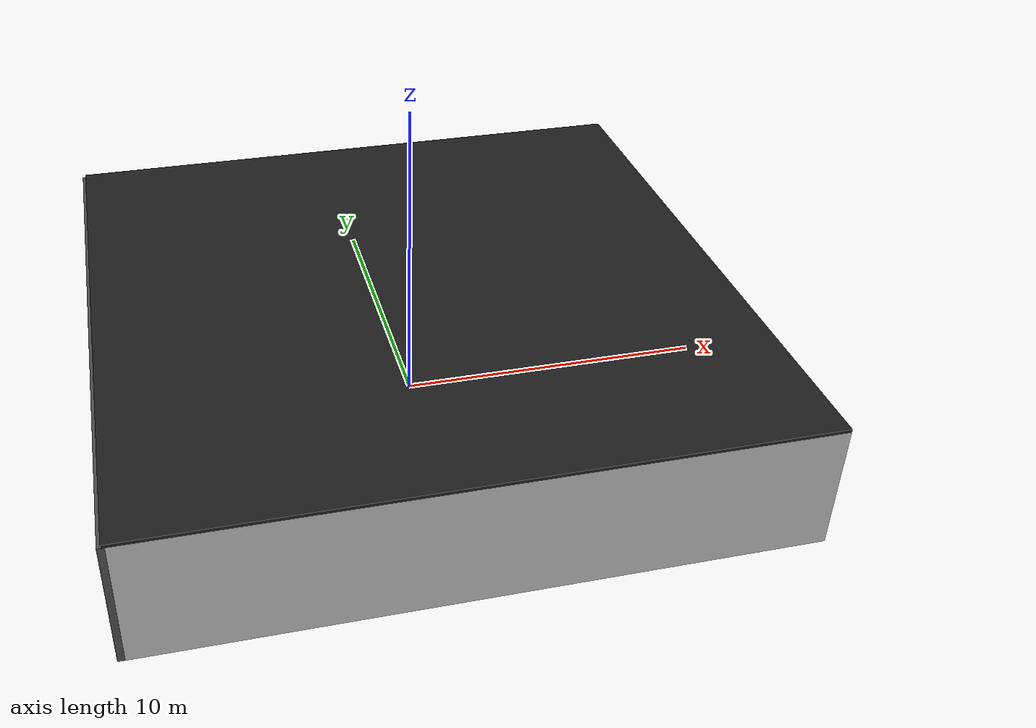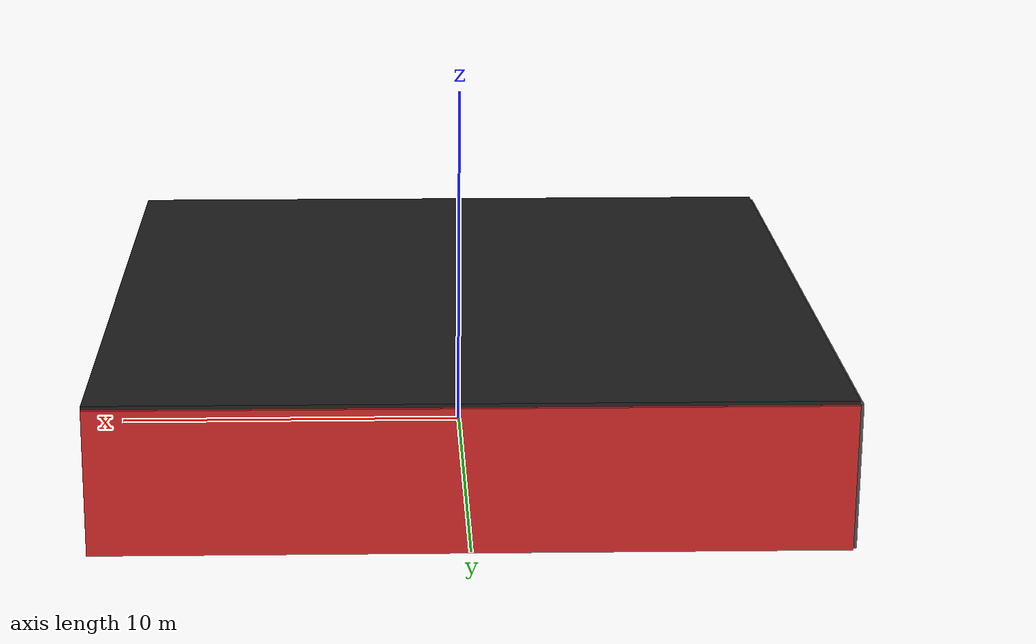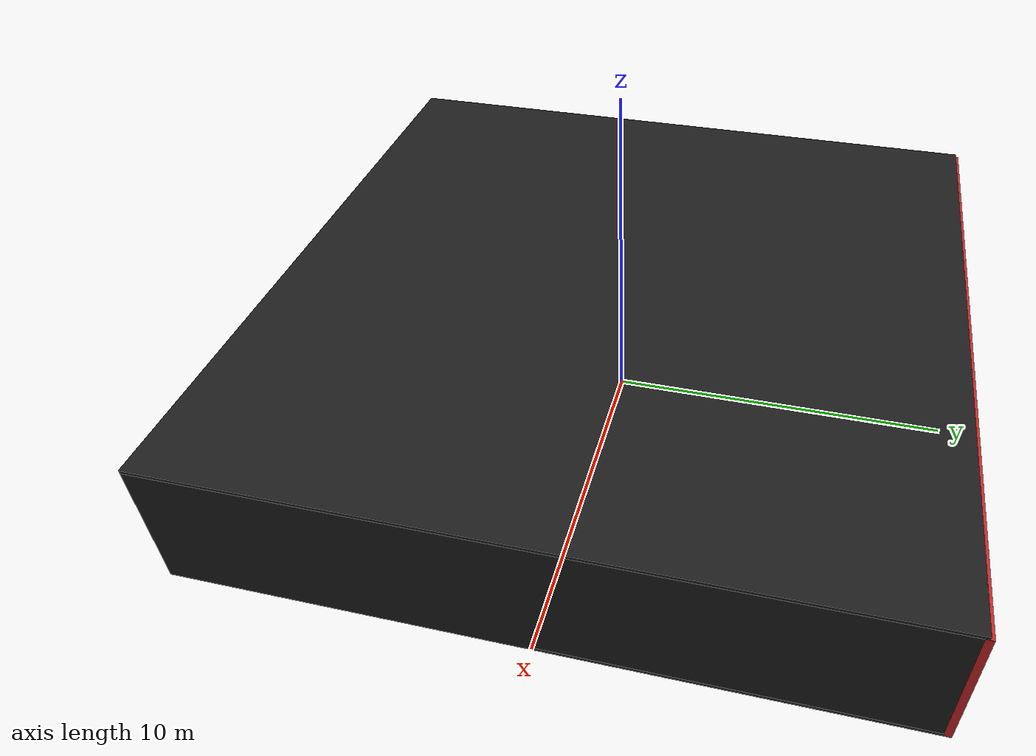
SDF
<sdf version="1.4">
 <world name="default">
  <physics type="ode">
   <max_step_size>0.001</max_step_size>
   <real_time_factor>1</real_time_factor>
   <real_time_update_rate>1000</real_time_update_rate>
   <gravity>0 0 -9.8</gravity>
  </physics>
  <scene><ambient>0.4 0.4 0.4 1</ambient><background>0.7 0.7 0.7 1</background><shadows>1</shadows></scene>
  <model name="Surrounding">
   <static>1</static>
   <link name="Ceiling">
    <collision name="Ceiling_Collision"><geometry><box><size>20 20 0.1</size></box></geometry></collision>
    <visual name="Ceiling_Visual">
     <geometry><box><size>20 20 0.1</size></box></geometry>
     <material>
      <script><uri>file://media/materials/scripts/gazebo.material</uri><name>Gazebo/FlatBlack</name></script>
     </material>
    </visual>
    <pose>0 0 4.05 0 0 0</pose>
   </link>
   <link name="Wall_South">
    <collision name="Wall_South_Collision">
     <geometry><box><size>20 0 4</size></box></geometry>
     <pose>0 0 2 0 -0 0</pose>
    </collision>
    <visual name="Wall_South_Visual">
     <pose>0 0 2 0 -0 0</pose>
     <geometry><box><size>20 0 4</size></box></geometry>
     <material>
      <script><uri>file://media/materials/scripts/gazebo.material</uri><name>Gazebo/JointAnchor</name></script>
     </material>
    </visual>
    <velocity_decay><linear>0</linear><angular>0</angular></velocity_decay>
    <pose>0 -10 0 0 -0 0</pose>
   </link>
   <link name="Wall_East">
    <collision name="Wall_21_Collision">
     <geometry><box><size>20 0 4</size></box></geometry>
     <pose>0 0 2 0 -0 0</pose>
    </collision>
    <visual name="Wall_21_Visual">
     <pose>0 0 2 0 -0 0</pose>
     <geometry><box><size>20 0 4</size></box></geometry>
     <material>
      <script><uri>file://media/materials/scripts/gazebo.material</uri><name>Gazebo/FlatBlack</name></script>
     </material>
    </visual>
    <velocity_decay><linear>0</linear><angular>0</angular></velocity_decay>
    <pose>10 0 0 0 -0 1.5708</pose>
   </link>
   <link name="Wall_North">
    <collision name="Wall_22_Collision">
     <geometry><box><size>20 0.2 4</size></box></geometry>
     <pose>0 0 2 0 -0 0</pose>
    </collision>
    <visual name="Wall_22_Visual">
     <pose>0 0 2 0 -0 0</pose>
     <geometry><box><size>20 0.2 4</size></box></geometry>
     <material>
      <script><uri>file://media/materials/scripts/gazebo.material</uri><name>Gazebo/Red</name></script>
     </material>
    </visual>
    <velocity_decay><linear>0</linear><angular>0</angular></velocity_decay>
    <pose>0 10 0 0 -0 0</pose>
   </link>
   <link name="Wall_West">
    <collision name="Wall_23_Collision">
     <geometry><box><size>20 0.2 4</size></box></geometry>
     <pose>0 0 2 0 -0 0</pose>
    </collision>
    <visual name="Wall_23_Visual">
     <pose>0 0 2 0 -0 0</pose>
     <geometry><box><size>20 0.2 4</size></box></geometry>
     <material>
      <script><uri>file://media/materials/scripts/gazebo.material</uri><name>Gazebo/DarkGrey</name></script>
     </material>
    </visual>
    <velocity_decay><linear>0</linear><angular>0</angular></velocity_decay>
    <pose>-10 0 0 0 0 -1.5708</pose>
   </link>
   <link name="Ground_link">
    <collision name="collision">
     <pose>0 0 .05 0 -0 0</pose>
     <geometry><box><size>20 20 0.1</size></box></geometry>
    </collision>
    <visual name="visual">
     <pose>0 0 .05 0 -0 0</pose>
     <geometry><box><size>20 20 0.1</size></box></geometry>
     <material>
      <script><uri>file://media/materials/scripts/gazebo.material</uri><name>Gazebo/Black</name></script>
     </material>
    </visual>
   </link>
   <static>1</static>
  </model>
  <spherical_coordinates>
   <surface_model>EARTH_WGS84</surface_model>
   <latitude_deg>0</latitude_deg>
   <longitude_deg>0</longitude_deg>
   <elevation>0</elevation>
   <heading_deg>0</heading_deg>
  </spherical_coordinates>
  <light name="lightball_0" type="diffuse">
   <diffuse>0.8 0.8 0.8 1</diffuse>
   <specular>0.2 0.2 0.2 1</specular>
   <attenuation>
    <range>100</range>
    <constant>0.7</constant>
    <linear>0.01</linear>
    <quadratic>0.001</quadratic>
   </attenuation>
   <direction>-0.5 0.1 -0.9</direction>
   <pose>-5.71514292069 -1.89328131177 1.47108858043 0 0 0</pose>
  </light>
  <light name="lightball_1" type="diffuse">
   <diffuse>0.8 0.8 0.8 1</diffuse>
   <specular>0.2 0.2 0.2 1</specular>
   <attenuation>
    <range>100</range>
    <constant>0.7</constant>
    <linear>0.01</linear>
    <quadratic>0.001</quadratic>
   </attenuation>
   <direction>-0.5 0.1 -0.9</direction>
   <pose>-0.273764415174 -1.37957240654 0.984729983585 0 0 0</pose>
  </light>
  <light name="lightball_2" type="diffuse">
   <diffuse>0.8 0.8 0.8 1</diffuse>
   <specular>0.2 0.2 0.2 1</specular>
   <attenuation>
    <range>100</range>
    <constant>0.7</constant>
    <linear>0.01</linear>
    <quadratic>0.001</quadratic>
   </attenuation>
   <direction>-0.5 0.1 -0.9</direction>
   <pose>2.40817995413 8.03846753082 1.67122966671 0 0 0</pose>
  </light>
  <light name="lightball_3" type="diffuse">
   <diffuse>0.8 0.8 0.8 1</diffuse>
   <specular>0.2 0.2 0.2 1</specular>
   <attenuation>
    <range>100</range>
    <constant>0.7</constant>
    <linear>0.01</linear>
    <quadratic>0.001</quadratic>
   </attenuation>
   <direction>-0.5 0.1 -0.9</direction>
   <pose>7.69675900158 6.19093720272 0.63519640721 0 0 0</pose>
  </light>
  <light name="lightball_4" type="diffuse">
   <diffuse>0.8 0.8 0.8 1</diffuse>
   <specular>0.2 0.2 0.2 1</specular>
   <attenuation>
    <range>100</range>
    <constant>0.7</constant>
    <linear>0.01</linear>
    <quadratic>0.001</quadratic>
   </attenuation>
   <direction>-0.5 0.1 -0.9</direction>
   <pose>4.70986144307 -1.5917991002 2.95988012062 0 0 0</pose>
  </light>
  <light name="lightball_5" type="diffuse">
   <diffuse>0.8 0.8 0.8 1</diffuse>
   <specular>0.2 0.2 0.2 1</specular>
   <attenuation>
    <range>100</range>
    <constant>0.7</constant>
    <linear>0.01</linear>
    <quadratic>0.001</quadratic>
   </attenuation>
   <direction>-0.5 0.1 -0.9</direction>
   <pose>3.21802448639 -5.40058345029 1.84499783195 0 0 0</pose>
  </light>
  <light name="lightball_6" type="diffuse">
   <diffuse>0.8 0.8 0.8 1</diffuse>
   <specular>0.2 0.2 0.2 1</specular>
   <attenuation>
    <range>100</range>
    <constant>0.7</constant>
    <linear>0.01</linear>
    <quadratic>0.001</quadratic>
   </attenuation>
   <direction>-0.5 0.1 -0.9</direction>
   <pose>-9.70853917405 4.5357724893 2.70643274966 0 0 0</pose>
  </light>
  <light name="lightball_7" type="diffuse">
   <diffuse>0.8 0.8 0.8 1</diffuse>
   <specular>0.2 0.2 0.2 1</specular>
   <attenuation>
    <range>100</range>
    <constant>0.7</constant>
    <linear>0.01</linear>
    <quadratic>0.001</quadratic>
   </attenuation>
   <direction>-0.5 0.1 -0.9</direction>
   <pose>9.55657015703 -2.0295275669 3.54657412171 0 0 0</pose>
  </light>
  <light name="lightball_8" type="diffuse">
   <diffuse>0.8 0.8 0.8 1</diffuse>
   <specular>0.2 0.2 0.2 1</specular>
   <attenuation>
    <range>100</range>
    <constant>0.7</constant>
    <linear>0.01</linear>
    <quadratic>0.001</quadratic>
   </attenuation>
   <direction>-0.5 0.1 -0.9</direction>
   <pose>6.98344578764 4.96863149713 1.83420427312 0 0 0</pose>
  </light>
  <light name="lightball_9" type="diffuse">
   <diffuse>0.8 0.8 0.8 1</diffuse>
   <specular>0.2 0.2 0.2 1</specular>
   <attenuation>
    <range>100</range>
    <constant>0.7</constant>
    <linear>0.01</linear>
    <quadratic>0.001</quadratic>
   </attenuation>
   <direction>-0.5 0.1 -0.9</direction>
   <pose>5.97268506297 4.66996324453 2.72471319225 0 0 0</pose>
  </light>
  <light name="lightball_10" type="diffuse">
   <diffuse>0.8 0.8 0.8 1</diffuse>
   <specular>0.2 0.2 0.2 1</specular>
   <attenuation>
    <range>100</range>
    <constant>0.7</constant>
    <linear>0.01</linear>
    <quadratic>0.001</quadratic>
   </attenuation>
   <direction>-0.5 0.1 -0.9</direction>
   <pose>-6.34890689205 -4.90644973571 1.57930589373 0 0 0</pose>
  </light>
  <light name="lightball_11" type="diffuse">
   <diffuse>0.8 0.8 0.8 1</diffuse>
   <specular>0.2 0.2 0.2 1</specular>
   <attenuation>
    <range>100</range>
    <constant>0.7</constant>
    <linear>0.01</linear>
    <quadratic>0.001</quadratic>
   </attenuation>
   <direction>-0.5 0.1 -0.9</direction>
   <pose>-9.84150373918 0.830583730674 3.71346614868 0 0 0</pose>
  </light>
  <light name="lightball_12" type="diffuse">
   <diffuse>0.8 0.8 0.8 1</diffuse>
   <specular>0.2 0.2 0.2 1</specular>
   <attenuation>
    <range>100</range>
    <constant>0.7</constant>
    <linear>0.01</linear>
    <quadratic>0.001</quadratic>
   </attenuation>
   <direction>-0.5 0.1 -0.9</direction>
   <pose>-1.46706084482 2.12227489974 2.17870016576 0 0 0</pose>
  </light>
  <include><uri>model://cabinet</uri><pose>-8.40245309882 -8.28588758685 0 0 0 0.774070277142</pose></include>
  <include>
   <uri>model://robocup_3Dsim_goal</uri>
   <pose>-7.59382670368 4.46768585874 0 0 0 1.05088927753</pose>
  </include>
  <include>
   <uri>model://robocup_3Dsim_goal</uri>
   <pose>-7.79454628712 7.12007539281 0 0 0 2.17074332783</pose>
  </include>
  <include>
   <uri>model://robocup_3Dsim_goal</uri>
   <pose>-5.13865184663 7.99433233935 0 0 0 1.89686933178</pose>
  </include>
  <include><uri>model://cabinet</uri><pose>-1.94919189291 -1.99253549444 0 0 0 0.643578710545</pose></include>
  <include>
   <uri>model://construction_cone</uri>
   <pose>0.934573725379 -8.47808592679 0 0 0 0.739238091009</pose>
  </include>
  <include><uri>model://cabinet</uri><pose>4.3944465044 2.36462542012 0 0 0 0.971575096256</pose></include>
  <include>
   <uri>model://textured_shapes</uri>
   <pose>4.56188286348 5.68325957549 0 0 0 0.824654946488</pose>
  </include>
 </world>
</sdf>

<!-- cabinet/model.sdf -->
<sdf version="1.5">
  <model name="cabinet">
    <static>true</static>
    <link name="cabinet_bottom_plate">
      <inertial>
        <pose>0 0 -1 0 0 0</pose>
        <inertia>
          <ixx>2.050000</ixx>
          <ixy>0</ixy>
          <ixz>0</ixz>
          <iyy>2.050000</iyy>
          <iyz>0</iyz>
          <izz>2.050000</izz>
        </inertia>
        <mass>25.000000</mass>
      </inertial>
      <collision name="cabinet_bottom_plate_geom">
        <pose>0 0 0.010000 0 0 0</pose>
        <geometry>
          <box>
            <size>0.450000 0.450000 0.020000</size>
          </box>
        </geometry>
      </collision>
      <visual name="cabinet_bottom_plate_geom_visual">
        <pose>0 0 0.010000 0 0 0</pose>
        <geometry>
          <box>
            <size>0.450000 0.450000 0.020000</size>
          </box>
        </geometry>
        <material>
          <script>
            <uri>model://media/materials/scripts/gazebo.material</uri>
            <name>Gazebo/Wood</name>
          </script>
        </material>
      </visual>
      <collision name="cabinet_bottom_plate_geom_cabinet_back_plate">
        <pose>0.235000 0 0.510000 0 0 0</pose>
        <geometry>
          <box>
            <size>0.020000 0.450000 1.020000</size>
          </box>
        </geometry>
      </collision>
      <visual name="cabinet_bottom_plate_geom_cabinet_back_plate_visual">
        <pose>0.235000 0 0.510000 0 0 0</pose>
        <geometry>
          <box>
            <size>0.020000 0.450000 1.020000</size>
          </box>
        </geometry>
        <material>
          <script>
            <uri>model://media/materials/scripts/gazebo.material</uri>
            <name>Gazebo/Wood</name>
          </script>
        </material>
      </visual>
      <collision name="cabinet_bottom_plate_geom_cabinet_left_plate">
        <pose>0 0.235000 0.510000 0 0 0</pose>
        <geometry>
          <box>
            <size>0.450000 0.020000 1.020000</size>
          </box>
        </geometry>
      </collision>
      <visual name="cabinet_bottom_plate_geom_cabinet_left_plate_visual">
        <pose>0 0.235000 0.510000 0 0 0</pose>
        <geometry>
          <box>
            <size>0.450000 0.020000 1.020000</size>
          </box>
        </geometry>
        <material>
          <script>
            <uri>model://media/materials/scripts/gazebo.material</uri>
            <name>Gazebo/Wood</name>
          </script>
        </material>
      </visual>
      <collision name="cabinet_bottom_plate_geom_cabinet_middle_plate">
        <pose>0 0 0.510000 0 0 0</pose>
        <geometry>
          <box>
            <size>0.450000 0.450000 0.020000</size>
          </box>
        </geometry>
      </collision>
      <visual name="cabinet_bottom_plate_geom_cabinet_middle_plate_visual">
        <pose>0 0 0.510000 0 0 0</pose>
        <geometry>
          <box>
            <size>0.450000 0.450000 0.020000</size>
          </box>
        </geometry>
        <material>
          <script>
            <uri>model://media/materials/scripts/gazebo.material</uri>
            <name>Gazebo/Wood</name>
          </script>
        </material>
      </visual>
      <collision name="cabinet_bottom_plate_geom_cabinet_right_plate">
        <pose>0 -0.235000 0.510000 0 0 0</pose>
        <geometry>
          <box>
            <size>0.450000 0.020000 1.020000</size>
          </box>
        </geometry>
      </collision>
      <visual name="cabinet_bottom_plate_geom_cabinet_right_plate_visual">
        <pose>0 -0.235000 0.510000 0 0 0</pose>
        <geometry>
          <box>
            <size>0.450000 0.020000 1.020000</size>
          </box>
        </geometry>
        <material>
          <script>
            <uri>model://media/materials/scripts/gazebo.material</uri>
            <name>Gazebo/Wood</name>
          </script>
        </material>
      </visual>
      <collision name="cabinet_bottom_plate_geom_cabinet_top_plate">
        <pose>0 0 1.010000 0 0 0</pose>
        <geometry>
          <box>
            <size>0.450000 0.450000 0.020000</size>
          </box>
        </geometry>
      </collision>
      <visual name="cabinet_bottom_plate_geom_cabinet_top_plate_visual">
        <pose>0 0 1.010000 0 0 0</pose>
        <geometry>
          <box>
            <size>0.450000 0.450000 0.020000</size>
          </box>
        </geometry>
        <material>
          <script>
            <uri>model://media/materials/scripts/gazebo.material</uri>
            <name>Gazebo/Wood</name>
          </script>
        </material>
      </visual>
    </link>
  </model>
</sdf>

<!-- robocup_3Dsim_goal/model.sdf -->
<sdf version="1.5">
  <model name="robocup_3d_goal">
    <static>true</static>
    <link name="left_post">
      <pose>0 1.05 0.45 0 0 0</pose>
      <collision name="collision">
        <geometry>
          <cylinder>
            <radius>0.05</radius>
            <length>0.9</length>
          </cylinder>
        </geometry>
      </collision>
      <visual name="visual">
        <geometry>
          <cylinder>
            <radius>0.05</radius>
            <length>0.9</length>
          </cylinder>
        </geometry>
        <material>
          <script>
            <uri>file://media/materials/scripts/gazebo.material</uri>
            <name>Gazebo/ZincYellow</name>
          </script>
        </material>
      </visual>
    </link>
    <link name="left_support_horiz_lower">
      <pose>0.30 1.05 0.01 0 0 0</pose>
      <collision name="collision">
        <geometry>
          <box>
            <size>0.50 0.02 0.02</size>
          </box>
        </geometry>
      </collision>
      <visual name="visual">
        <geometry>
          <box>
            <size>0.50 0.02 0.02</size>
          </box>
        </geometry>
        <material>
          <script>
            <uri>file://media/materials/scripts/gazebo.material</uri>
            <name>Gazebo/White</name>
          </script>
        </material>
      </visual>
    </link>
    <link name="left_support_horiz_upper">
      <pose>0.30 1.05 0.79 0 0 0</pose>
      <collision name="collision">
        <geometry>
          <box>
            <size>0.50 0.02 0.02</size>
          </box>
        </geometry>
      </collision>
      <visual name="visual">
        <geometry>
          <box>
            <size>0.50 0.02 0.02</size>
          </box>
        </geometry>
        <material>
          <script>
            <uri>file://media/materials/scripts/gazebo.material</uri>
            <name>Gazebo/White</name>
          </script>
        </material>
      </visual>
    </link>
    <link name="left_support_vertical">
      <pose>0.56 1.05 0.4 0 1.5708 0</pose>
      <collision name="collision">
        <geometry>
          <box>
            <size>0.80 0.02 0.02</size>
          </box>
        </geometry>
      </collision>
      <visual name="visual">
        <geometry>
          <box>
            <size>0.80 0.02 0.02</size>
          </box>
        </geometry>
        <material>
          <script>
            <uri>file://media/materials/scripts/gazebo.material</uri>
            <name>Gazebo/White</name>
          </script>
        </material>
      </visual>
    </link>
    <link name="right_support_horiz_lower">
      <pose>0.30 -1.05 0.01 0 0 0</pose>
      <collision name="collision">
        <geometry>
          <box>
            <size>0.50 0.02 0.02</size>
          </box>
        </geometry>
      </collision>
      <visual name="visual">
        <geometry>
          <box>
            <size>0.50 0.02 0.02</size>
          </box>
        </geometry>
        <material>
          <script>
            <uri>file://media/materials/scripts/gazebo.material</uri>
            <name>Gazebo/White</name>
          </script>
        </material>
      </visual>
    </link>
    <link name="right_support_horiz_upper">
      <pose>0.30 -1.05 0.79 0 0 0</pose>
      <collision name="collision">
        <geometry>
          <box>
            <size>0.50 0.02 0.02</size>
          </box>
        </geometry>
      </collision>
      <visual name="visual">
        <geometry>
          <box>
            <size>0.50 0.02 0.02</size>
          </box>
        </geometry>
        <material>
          <script>
            <uri>file://media/materials/scripts/gazebo.material</uri>
            <name>Gazebo/White</name>
          </script>
        </material>
      </visual>
    </link>
    <link name="right_support_vertical">
      <pose>0.56 -1.05 0.4 0 1.5708 0</pose>
      <collision name="collision">
        <geometry>
          <box>
            <size>0.80 0.02 0.02</size>
          </box>
        </geometry>
      </collision>
      <visual name="visual">
        <geometry>
          <box>
            <size>0.80 0.02 0.02</size>
          </box>
        </geometry>
        <material>
          <script>
            <uri>file://media/materials/scripts/gazebo.material</uri>
            <name>Gazebo/White</name>
          </script>
        </material>
      </visual>
    </link>
    <link name="center_support_horiz_lower">
      <pose>0.56 0 0.01 0 1.5708 0</pose>
      <collision name="collision">
        <geometry>
          <box>
            <size>0.02 2.08 0.02</size>
          </box>
        </geometry>
      </collision>
      <visual name="visual">
        <geometry>
          <box>
            <size>0.02 2.08 0.02</size>
          </box>
        </geometry>
        <material>
          <script>
            <uri>file://media/materials/scripts/gazebo.material</uri>
            <name>Gazebo/White</name>
          </script>
        </material>
      </visual>
    </link>
    <link name="center_support_horiz_upper">
      <pose>0.56 0 0.79 0 1.5708 0</pose>
      <collision name="collision">
        <geometry>
          <box>
            <size>0.02 2.08 0.02</size>
          </box>
        </geometry>
      </collision>
      <visual name="visual">
        <geometry>
          <box>
            <size>0.02 2.08 0.02</size>
          </box>
        </geometry>
        <material>
          <script>
            <uri>file://media/materials/scripts/gazebo.material</uri>
            <name>Gazebo/White</name>
          </script>
        </material>
      </visual>
    </link>
    <link name="right_post">
      <pose>0 -1.05 0.45 0 0 0</pose>
      <collision name="collision">
        <geometry>
          <cylinder>
            <radius>0.05</radius>
            <length>0.9</length>
          </cylinder>
        </geometry>
      </collision>
      <visual name="visual">
        <geometry>
          <cylinder>
            <radius>0.05</radius>
            <length>0.9</length>
          </cylinder>
        </geometry>
        <material>
          <script>
            <uri>file://media/materials/scripts/gazebo.material</uri>
            <name>Gazebo/ZincYellow</name>
          </script>
        </material>
      </visual>
    </link>
    <link name="crossbar">
      <pose>0 0 0.85 1.57 1.57 0</pose>
      <collision name="collision">
        <geometry>
          <cylinder>
            <radius>0.05</radius>
            <length>2.0</length>
          </cylinder>
        </geometry>
      </collision>
      <visual name="visual">
        <geometry>
          <cylinder>
            <radius>0.05</radius>
            <length>2.0</length>
          </cylinder>
        </geometry>
        <material>
          <script>
            <uri>file://media/materials/scripts/gazebo.material</uri>
            <name>Gazebo/ZincYellow</name>
          </script>
        </material>
      </visual>
    </link>
    <link name="center_net">
      <pose>0.56 0 0.40 0 0 0</pose>
      <collision name="collision">
        <geometry>
          <box>
            <size>0.01 2.1 0.80</size>
          </box>
        </geometry>
      </collision>
      <visual name="visual">
        <geometry>
          <box>
            <size>0.01 2.1 0.80</size>
          </box>
        </geometry>
        <material>
          <script>
            <uri>model://../model_source/models/robocup09_spl_field/materials/scripts/</uri>
            <uri>model://../model_source/models/robocup09_spl_field/materials/textures/</uri>
            <name>RoboCup/Net</name>
          </script>
        </material>
      </visual>
    </link>
    <link name="left_net">
      <pose>0.30 1.05 0.40 0 0 0</pose>
      <collision name="collision">
        <geometry>
          <box>
            <size>0.50 0.01 0.76</size>
          </box>
        </geometry>
      </collision>
      <visual name="visual">
        <geometry>
          <box>
            <size>0.50 0.01 0.76</size>
          </box>
        </geometry>
        <material>
          <script>
            <uri>model://../model_source/models/robocup09_spl_field/materials/scripts/</uri>
            <uri>model://../model_source/models/robocup09_spl_field/materials/textures/</uri>
            <name>RoboCup/Net</name>
          </script>
        </material>
      </visual>
    </link>
    <link name="right_net">
      <pose>0.30 -1.05 0.40 0 0 0</pose>
      <collision name="collision">
        <geometry>
          <box>
            <size>0.50 0.01 0.76</size>
          </box>
        </geometry>
      </collision>
      <visual name="visual">
        <geometry>
          <box>
            <size>0.50 0.01 0.76</size>
          </box>
        </geometry>
        <material>
          <script>
            <uri>model://../model_source/models/robocup09_spl_field/materials/scripts/</uri>
            <uri>model://../model_source/models/robocup09_spl_field/materials/textures/</uri>
            <name>RoboCup/Net</name>
          </script>
        </material>
      </visual>
    </link>
  </model>
</sdf>

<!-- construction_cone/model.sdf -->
<sdf version="1.5">
  <model name="Construction Cone">
    <link name="link">
      <collision name="collision">
        <geometry>
          <mesh>
            <scale>10 10 10</scale>
            <uri>file://isr-testbed/construction_cone/meshes/construction_cone.dae</uri>
          </mesh>
        </geometry>
      </collision>
      <visual name="visual">
        <geometry>
          <mesh>
            <scale>10 10 10</scale>
            <uri>file://isr-testbed/construction_cone/meshes/construction_cone.dae</uri>
          </mesh>
        </geometry>
      </visual>
    </link>
  </model>
</sdf>

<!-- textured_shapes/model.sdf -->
<sdf version="1.6">
  <model name="textured_shapes">
    <pose>0 0 0.5 0 0 0</pose>
    <link name="box">
      <pose>0 -1.5 0 0 0 0</pose>
      <collision name="collision">
        <geometry>
          <box>
            <size>1 1 1</size>
          </box>
        </geometry>
      </collision>
      <visual name="visual">
        <geometry>
          <box>
            <size>1 1 1</size>
          </box>
        </geometry>
        <material>
          <script>
            <uri>model://../model_source/models/textured_shapes/materials/scripts</uri>
            <uri>model://../model_source/models/textured_shapes/materials/textures</uri>
            <name>TexturedShape/Squares</name>
          </script>
        </material>
      </visual>
    </link>
    <link name="sphere">
      <collision name="collision">
        <geometry>
          <sphere>
            <radius>0.5</radius>
          </sphere>
        </geometry>
      </collision>
      <visual name="visual">
        <geometry>
          <sphere>
            <radius>0.5</radius>
          </sphere>
        </geometry>
        <material>
          <script>
            <uri>model://../model_source/models/textured_shapes/materials/scripts</uri>
            <uri>model://../model_source/models/textured_shapes/materials/textures</uri>
            <name>TexturedShape/Squares</name>
          </script>
        </material>
      </visual>
    </link>
    <link name="cylinder">
      <pose>0 1.5 0 0 0 0</pose>
      <collision name="collision">
        <geometry>
          <cylinder>
            <radius>0.5</radius>
            <length>1</length>
          </cylinder>
        </geometry>
      </collision>
      <visual name="visual">
        <geometry>
          <cylinder>
            <radius>0.5</radius>
            <length>1</length>
          </cylinder>
        </geometry>
        <material>
          <script>
            <uri>model://../model_source/models/textured_shapes/materials/scripts</uri>
            <uri>model://../model_source/models/textured_shapes/materials/textures</uri>
            <name>TexturedShape/Squares</name>
          </script>
        </material>
      </visual>
    </link>
  </model>
</sdf>
